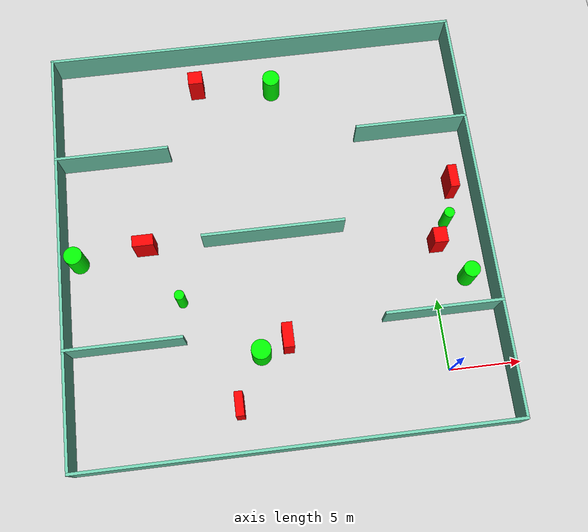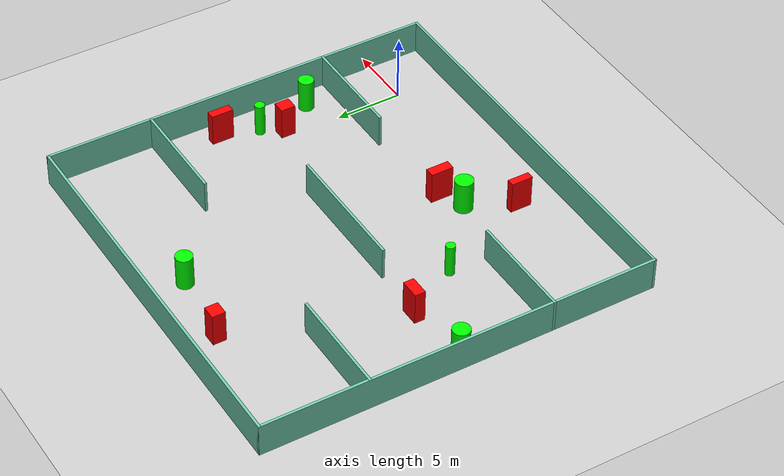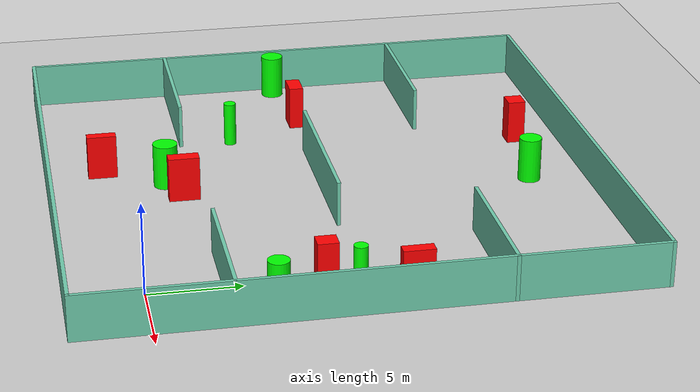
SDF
<sdf version="1.7">
 <world name="default">
  <light name="sun" type="directional">
   <pose>0 0 10 0 -0 0</pose>
   <diffuse>0.8 0.8 0.8 1</diffuse>
   <specular>0.2 0.2 0.2 1</specular>
   <attenuation>
    <range>1000</range>
    <constant>0.9</constant>
    <linear>0.01</linear>
    <quadratic>0.001</quadratic>
   </attenuation>
   <direction>-0.5 0.1 -0.9</direction>
   <spot><inner_angle>0</inner_angle><outer_angle>0</outer_angle><falloff>0</falloff></spot>
  </light>
  <model name="ground_plane">
   <static>1</static>
   <link name="link">
    <collision name="collision">
     <geometry><plane><normal>0 0 1</normal><size>100 100</size></plane></geometry>
     <surface>
      <contact><collide_bitmask>65535</collide_bitmask></contact>
      <friction><ode><mu>100</mu><mu2>50</mu2></ode></friction>
     </surface>
    </collision>
    <visual name="visual">
     <cast_shadows>0</cast_shadows>
     <geometry><plane><normal>0 0 1</normal><size>100 100</size></plane></geometry>
     <material>
      <script><uri>file://media/materials/scripts/gazebo.material</uri><name>Gazebo/Grey</name></script>
     </material>
    </visual>
   </link>
  </model>
  <gravity>0 0 -9.8</gravity>
  <magnetic_field>6e-06 2.3e-05 -4.2e-05</magnetic_field>
  <atmosphere type="adiabatic"/>
  <physics type="ode">
   <max_step_size>0.001</max_step_size>
   <real_time_factor>1</real_time_factor>
   <real_time_update_rate>1000</real_time_update_rate>
  </physics>
  <scene><ambient>0.4 0.4 0.4 1</ambient><background>0.7 0.7 0.7 1</background><shadows>1</shadows></scene>
  <spherical_coordinates>
   <surface_model>EARTH_WGS84</surface_model>
   <latitude_deg>0</latitude_deg>
   <longitude_deg>0</longitude_deg>
   <elevation>0</elevation>
   <heading_deg>0</heading_deg>
  </spherical_coordinates>
  <model name="my_base_walls">
   <link name="Wall_10">
    <collision name="Wall_10_Collision">
     <geometry><box><size>8.2 0.2 2.5</size></box></geometry>
     <pose>0 0 1.25 0 -0 0</pose>
    </collision>
    <visual name="Wall_10_Visual">
     <pose>0 0 1.25 0 -0 0</pose>
     <geometry><box><size>8.2 0.2 2.5</size></box></geometry>
     <material>
      <script><uri>file://media/materials/scripts/gazebo.material</uri><name>Gazebo/Grey</name></script>
      <ambient>0.435294 0.796078 0.67451 1</ambient>
     </material>
     <meta><layer>0</layer></meta>
    </visual>
    <pose>-11 -7 0 0 -0 0</pose>
   </link>
   <link name="Wall_12">
    <collision name="Wall_12_Collision">
     <geometry><box><size>8.2 0.2 2.5</size></box></geometry>
     <pose>0 0 1.25 0 -0 0</pose>
    </collision>
    <visual name="Wall_12_Visual">
     <pose>0 0 1.25 0 -0 0</pose>
     <geometry><box><size>8.2 0.2 2.5</size></box></geometry>
     <material>
      <script><uri>file://media/materials/scripts/gazebo.material</uri><name>Gazebo/Grey</name></script>
      <ambient>0.435294 0.796078 0.67451 1</ambient>
     </material>
     <meta><layer>0</layer></meta>
    </visual>
    <pose>-11 7 0 0 -0 0</pose>
   </link>
   <link name="Wall_14">
    <collision name="Wall_14_Collision">
     <geometry><box><size>8.2 0.2 2.5</size></box></geometry>
     <pose>0 0 1.25 0 -0 0</pose>
    </collision>
    <visual name="Wall_14_Visual">
     <pose>0 0 1.25 0 -0 0</pose>
     <geometry><box><size>8.2 0.2 2.5</size></box></geometry>
     <material>
      <script><uri>file://media/materials/scripts/gazebo.material</uri><name>Gazebo/Grey</name></script>
      <ambient>0.435294 0.796078 0.67451 1</ambient>
     </material>
     <meta><layer>0</layer></meta>
    </visual>
    <pose>11 7 0 0 -0 3.14159</pose>
   </link>
   <link name="Wall_16">
    <collision name="Wall_16_Collision">
     <geometry><box><size>10.2 0.2 2.5</size></box></geometry>
     <pose>0 0 1.25 0 -0 0</pose>
    </collision>
    <visual name="Wall_16_Visual">
     <pose>0 0 1.25 0 -0 0</pose>
     <geometry><box><size>10.2 0.2 2.5</size></box></geometry>
     <material>
      <script><uri>file://media/materials/scripts/gazebo.material</uri><name>Gazebo/Grey</name></script>
      <ambient>0.435294 0.796078 0.67451 1</ambient>
     </material>
     <meta><layer>0</layer></meta>
    </visual>
    <pose>0 0 0 0 -0 3.14159</pose>
   </link>
   <link name="Wall_2">
    <collision name="Wall_2_Collision">
     <geometry><box><size>30.2 0.2 2.5</size></box></geometry>
     <pose>0 0 1.25 0 -0 0</pose>
    </collision>
    <visual name="Wall_2_Visual">
     <pose>0 0 1.25 0 -0 0</pose>
     <geometry><box><size>30.2 0.2 2.5</size></box></geometry>
     <material>
      <script><uri>file://media/materials/scripts/gazebo.material</uri><name>Gazebo/Grey</name></script>
      <ambient>0.435294 0.796078 0.67451 1</ambient>
     </material>
     <meta><layer>0</layer></meta>
    </visual>
    <pose>0 -15 0 0 -0 3.14159</pose>
   </link>
   <link name="Wall_3">
    <collision name="Wall_3_Collision">
     <geometry><box><size>30.2 0.2 2.5</size></box></geometry>
     <pose>0 0 1.25 0 -0 0</pose>
    </collision>
    <visual name="Wall_3_Visual">
     <pose>0 0 1.25 0 -0 0</pose>
     <geometry><box><size>30.2 0.2 2.5</size></box></geometry>
     <material>
      <script><uri>file://media/materials/scripts/gazebo.material</uri><name>Gazebo/Grey</name></script>
      <ambient>0.435294 0.796078 0.67451 1</ambient>
     </material>
     <meta><layer>0</layer></meta>
    </visual>
    <pose>-15 0 0 0 -0 1.5708</pose>
   </link>
   <link name="Wall_4">
    <collision name="Wall_4_Collision">
     <geometry><box><size>30.2 0.2 2.5</size></box></geometry>
     <pose>0 0 1.25 0 -0 0</pose>
    </collision>
    <visual name="Wall_4_Visual">
     <pose>0 0 1.25 0 -0 0</pose>
     <geometry><box><size>30.2 0.2 2.5</size></box></geometry>
     <material>
      <script><uri>file://media/materials/scripts/gazebo.material</uri><name>Gazebo/Grey</name></script>
      <ambient>0.435294 0.796078 0.67451 1</ambient>
     </material>
     <meta><layer>0</layer></meta>
    </visual>
    <pose>0 15 0 0 -0 0</pose>
   </link>
   <link name="Wall_6">
    <collision name="Wall_6_Collision">
     <geometry><box><size>30.2 0.2 2.5</size></box></geometry>
     <pose>0 0 1.25 0 -0 0</pose>
    </collision>
    <visual name="Wall_6_Visual">
     <pose>0 0 1.25 0 -0 0</pose>
     <geometry><box><size>30.2 0.2 2.5</size></box></geometry>
     <material>
      <script><uri>file://media/materials/scripts/gazebo.material</uri><name>Gazebo/Grey</name></script>
      <ambient>0.435294 0.796078 0.67451 1</ambient>
     </material>
     <meta><layer>0</layer></meta>
    </visual>
    <pose>15 0 0 0 -0 1.5708</pose>
   </link>
   <link name="Wall_8">
    <collision name="Wall_8_Collision">
     <geometry><box><size>8.2 0.2 2.5</size></box></geometry>
     <pose>0 0 1.25 0 -0 0</pose>
    </collision>
    <visual name="Wall_8_Visual">
     <pose>0 0 1.25 0 -0 0</pose>
     <geometry><box><size>8.2 0.2 2.5</size></box></geometry>
     <material>
      <script><uri>file://media/materials/scripts/gazebo.material</uri><name>Gazebo/Grey</name></script>
      <ambient>0.435294 0.796078 0.67451 1</ambient>
     </material>
     <meta><layer>0</layer></meta>
    </visual>
    <pose>11 -7 0 0 -0 3.14159</pose>
   </link>
   <static>1</static>
   <pose>-11 11 0 0 -0 0</pose>
  </model>
  <model name="cylinder1">
   <static>1</static>
   <link name="link">
    <inertial>
     <mass>1</mass>
     <inertia><ixx>0.5</ixx><ixy>0</ixy><ixz>0</ixz><iyy>0.5</iyy><iyz>0</iyz><izz>1</izz></inertia>
    </inertial>
    <collision name="collision">
     <geometry><cylinder><radius>0.6889017600911617</radius><length>2.5</length></cylinder></geometry>
    </collision>
    <visual name="visual">
     <geometry><cylinder><radius>0.6889017600911617</radius><length>2.5</length></cylinder></geometry>
     <material>
      <ambient>0 1 0 1</ambient>
      <diffuse>0 1 0 1</diffuse>
      <specular>0.1 0.1 0.1 1</specular>
      <emissive>0 0 0 0</emissive>
     </material>
    </visual>
   </link>
   <pose>-12.796792241538068 2.527983271449454 1.25 0 0 0</pose>
  </model>
  <model name="cylinder2">
   <static>1</static>
   <link name="link">
    <inertial>
     <mass>1</mass>
     <inertia><ixx>0.5</ixx><ixy>0</ixy><ixz>0</ixz><iyy>0.5</iyy><iyz>0</iyz><izz>1</izz></inertia>
    </inertial>
    <collision name="collision">
     <geometry><cylinder><radius>0.34805793265341967</radius><length>2.5</length></cylinder></geometry>
    </collision>
    <visual name="visual">
     <geometry><cylinder><radius>0.34805793265341967</radius><length>2.5</length></cylinder></geometry>
     <material>
      <ambient>0 1 0 1</ambient>
      <diffuse>0 1 0 1</diffuse>
      <specular>0.1 0.1 0.1 1</specular>
      <emissive>0 0 0 0</emissive>
     </material>
    </visual>
   </link>
   <pose>-17.948915933183027 6.902433538203752 1.25 0 0 0</pose>
  </model>
  <model name="cylinder3">
   <static>1</static>
   <link name="link">
    <inertial>
     <mass>1</mass>
     <inertia><ixx>0.5</ixx><ixy>0</ixy><ixz>0</ixz><iyy>0.5</iyy><iyz>0</iyz><izz>1</izz></inertia>
    </inertial>
    <collision name="collision">
     <geometry><cylinder><radius>0.37273201660294103</radius><length>2.5</length></cylinder></geometry>
    </collision>
    <visual name="visual">
     <geometry><cylinder><radius>0.37273201660294103</radius><length>2.5</length></cylinder></geometry>
     <material>
      <ambient>0 1 0 1</ambient>
      <diffuse>0 1 0 1</diffuse>
      <specular>0.1 0.1 0.1 1</specular>
      <emissive>0 0 0 0</emissive>
     </material>
    </visual>
   </link>
   <pose>1.4917697600969504 10.635899426306098 1.25 0 0 0</pose>
  </model>
  <model name="cylinder4">
   <static>1</static>
   <link name="link">
    <inertial>
     <mass>1</mass>
     <inertia><ixx>0.5</ixx><ixy>0</ixy><ixz>0</ixz><iyy>0.5</iyy><iyz>0</iyz><izz>1</izz></inertia>
    </inertial>
    <collision name="collision">
     <geometry><cylinder><radius>0.6269452329726399</radius><length>2.5</length></cylinder></geometry>
    </collision>
    <visual name="visual">
     <geometry><cylinder><radius>0.6269452329726399</radius><length>2.5</length></cylinder></geometry>
     <material>
      <ambient>0 1 0 1</ambient>
      <diffuse>0 1 0 1</diffuse>
      <specular>0.1 0.1 0.1 1</specular>
      <emissive>0 0 0 0</emissive>
     </material>
    </visual>
   </link>
   <pose>-9.838860303114942 22.707024879988875 1.25 0 0 0</pose>
  </model>
  <model name="cylinder5">
   <static>1</static>
   <link name="link">
    <inertial>
     <mass>1</mass>
     <inertia><ixx>0.5</ixx><ixy>0</ixy><ixz>0</ixz><iyy>0.5</iyy><iyz>0</iyz><izz>1</izz></inertia>
    </inertial>
    <collision name="collision">
     <geometry><cylinder><radius>0.6453457382152907</radius><length>2.5</length></cylinder></geometry>
    </collision>
    <visual name="visual">
     <geometry><cylinder><radius>0.6453457382152907</radius><length>2.5</length></cylinder></geometry>
     <material>
      <ambient>0 1 0 1</ambient>
      <diffuse>0 1 0 1</diffuse>
      <specular>0.1 0.1 0.1 1</specular>
      <emissive>0 0 0 0</emissive>
     </material>
    </visual>
   </link>
   <pose>-25.071360509222604 10.577433050084986 1.25 0 0 0</pose>
  </model>
  <model name="cylinder6">
   <static>1</static>
   <link name="link">
    <inertial>
     <mass>1</mass>
     <inertia><ixx>0.5</ixx><ixy>0</ixy><ixz>0</ixz><iyy>0.5</iyy><iyz>0</iyz><izz>1</izz></inertia>
    </inertial>
    <collision name="collision">
     <geometry><cylinder><radius>0.5734815939337918</radius><length>2.5</length></cylinder></geometry>
    </collision>
    <visual name="visual">
     <geometry><cylinder><radius>0.5734815939337918</radius><length>2.5</length></cylinder></geometry>
     <material>
      <ambient>0 1 0 1</ambient>
      <diffuse>0 1 0 1</diffuse>
      <specular>0.1 0.1 0.1 1</specular>
      <emissive>0 0 0 0</emissive>
     </material>
    </visual>
   </link>
   <pose>2.3019156047787526 6.371237290373962 1.25 0 0 0</pose>
  </model>
  <model name="box1">
   <static>1</static>
   <link name="link">
    <inertial>
     <mass>1</mass>
     <inertia><ixx>0.083</ixx><ixy>0</ixy><ixz>0</ixz><iyy>0.083</iyy><iyz>0</iyz><izz>0.083</izz></inertia>
    </inertial>
    <collision name="collision">
     <geometry><box><size>0.7469181942493506 1.7170100623373183 2.5</size></box></geometry>
    </collision>
    <visual name="visual">
     <geometry><box><size>0.7469181942493506 1.7170100623373183 2.5</size></box></geometry>
     <material>
      <ambient>1 0 0 1</ambient>
      <diffuse>1 0 0 1</diffuse>
      <specular>0.1 0.1 0.1 1</specular>
      <emissive>0 0 0 0</emissive>
     </material>
    </visual>
    <sensor name="my_contact" type="contact">
     <contact><collision>box_collision</collision><topic>__default_topic__</topic></contact>
    </sensor>
   </link>
   <pose>-10.892993141395191 3.314125342755693 1.25 0 0 0</pose>
  </model>
  <model name="box2">
   <static>1</static>
   <link name="link">
    <inertial>
     <mass>1</mass>
     <inertia><ixx>0.083</ixx><ixy>0</ixy><ixz>0</ixz><iyy>0.083</iyy><iyz>0</iyz><izz>0.083</izz></inertia>
    </inertial>
    <collision name="collision">
     <geometry><box><size>0.6491170518009431 1.679134552741794 2.5</size></box></geometry>
    </collision>
    <visual name="visual">
     <geometry><box><size>0.6491170518009431 1.679134552741794 2.5</size></box></geometry>
     <material>
      <ambient>1 0 0 1</ambient>
      <diffuse>1 0 0 1</diffuse>
      <specular>0.1 0.1 0.1 1</specular>
      <emissive>0 0 0 0</emissive>
     </material>
    </visual>
    <sensor name="my_contact" type="contact">
     <contact><collision>box_collision</collision><topic>__default_topic__</topic></contact>
    </sensor>
   </link>
   <pose>2.2863442462188672 13.370751506287924 1.25 0 0 0</pose>
  </model>
  <model name="box3">
   <static>1</static>
   <link name="link">
    <inertial>
     <mass>1</mass>
     <inertia><ixx>0.083</ixx><ixy>0</ixy><ixz>0</ixz><iyy>0.083</iyy><iyz>0</iyz><izz>0.083</izz></inertia>
    </inertial>
    <collision name="collision">
     <geometry><box><size>0.9731643736588491 1.1110575123932755 2.5</size></box></geometry>
    </collision>
    <visual name="visual">
     <geometry><box><size>0.9731643736588491 1.1110575123932755 2.5</size></box></geometry>
     <material>
      <ambient>1 0 0 1</ambient>
      <diffuse>1 0 0 1</diffuse>
      <specular>0.1 0.1 0.1 1</specular>
      <emissive>0 0 0 0</emissive>
     </material>
    </visual>
    <sensor name="my_contact" type="contact">
     <contact><collision>box_collision</collision><topic>__default_topic__</topic></contact>
    </sensor>
   </link>
   <pose>0.5778266382194133 9.086304944505192 1.25 0 0 0</pose>
  </model>
  <model name="box4">
   <static>1</static>
   <link name="link">
    <inertial>
     <mass>1</mass>
     <inertia><ixx>0.083</ixx><ixy>0</ixy><ixz>0</ixz><iyy>0.083</iyy><iyz>0</iyz><izz>0.083</izz></inertia>
    </inertial>
    <collision name="collision">
     <geometry><box><size>1.0666609735116923 1.0011042356829043 2.5</size></box></geometry>
    </collision>
    <visual name="visual">
     <geometry><box><size>1.0666609735116923 1.0011042356829043 2.5</size></box></geometry>
     <material>
      <ambient>1 0 0 1</ambient>
      <diffuse>1 0 0 1</diffuse>
      <specular>0.1 0.1 0.1 1</specular>
      <emissive>0 0 0 0</emissive>
     </material>
    </visual>
    <sensor name="my_contact" type="contact">
     <contact><collision>box_collision</collision><topic>__default_topic__</topic></contact>
    </sensor>
   </link>
   <pose>-15.46215818592475 23.39916050898993 1.25 0 0 0</pose>
  </model>
  <model name="box5">
   <static>1</static>
   <link name="link">
    <inertial>
     <mass>1</mass>
     <inertia><ixx>0.083</ixx><ixy>0</ixy><ixz>0</ixz><iyy>0.083</iyy><iyz>0</iyz><izz>0.083</izz></inertia>
    </inertial>
    <collision name="collision">
     <geometry><box><size>1.4948535068574365 0.8020855244308343 2.5</size></box></geometry>
    </collision>
    <visual name="visual">
     <geometry><box><size>1.4948535068574365 0.8020855244308343 2.5</size></box></geometry>
     <material>
      <ambient>1 0 0 1</ambient>
      <diffuse>1 0 0 1</diffuse>
      <specular>0.1 0.1 0.1 1</specular>
      <emissive>0 0 0 0</emissive>
     </material>
    </visual>
    <sensor name="my_contact" type="contact">
     <contact><collision>box_collision</collision><topic>__default_topic__</topic></contact>
    </sensor>
   </link>
   <pose>-20.195347440182196 11.120572442275588 1.25 0 0 0</pose>
  </model>
  <model name="box6">
   <static>1</static>
   <link name="link">
    <inertial>
     <mass>1</mass>
     <inertia><ixx>0.083</ixx><ixy>0</ixy><ixz>0</ixz><iyy>0.083</iyy><iyz>0</iyz><izz>0.083</izz></inertia>
    </inertial>
    <collision name="collision">
     <geometry><box><size>0.5790204799211873 1.6311842320896455 2.5</size></box></geometry>
    </collision>
    <visual name="visual">
     <geometry><box><size>0.5790204799211873 1.6311842320896455 2.5</size></box></geometry>
     <material>
      <ambient>1 0 0 1</ambient>
      <diffuse>1 0 0 1</diffuse>
      <specular>0.1 0.1 0.1 1</specular>
      <emissive>0 0 0 0</emissive>
     </material>
    </visual>
    <sensor name="my_contact" type="contact">
     <contact><collision>box_collision</collision><topic>__default_topic__</topic></contact>
    </sensor>
   </link>
   <pose>-14.62769575889353 -0.8547617375413452 1.25 0 0 0</pose>
  </model>
 </world>
</sdf>
